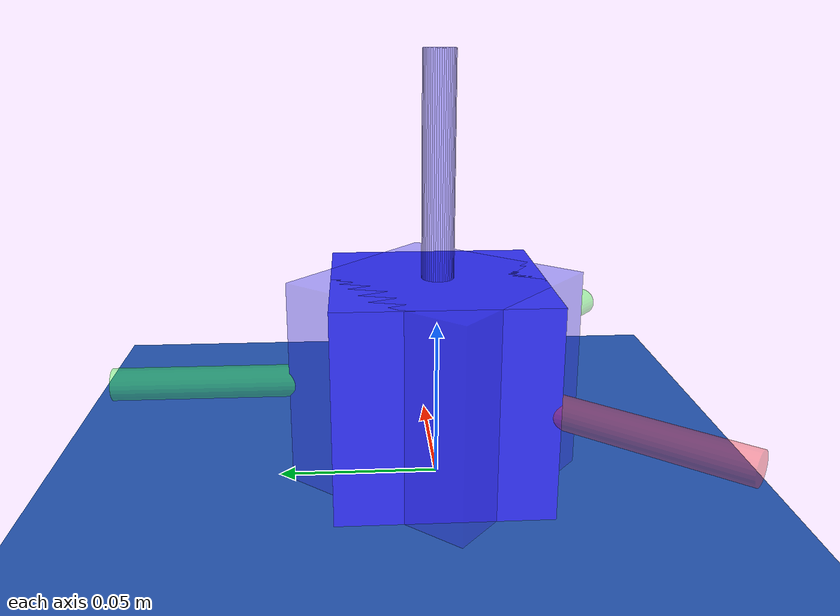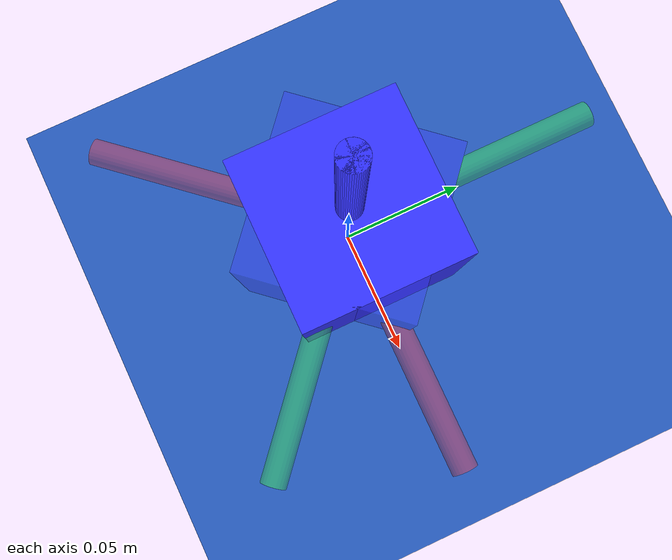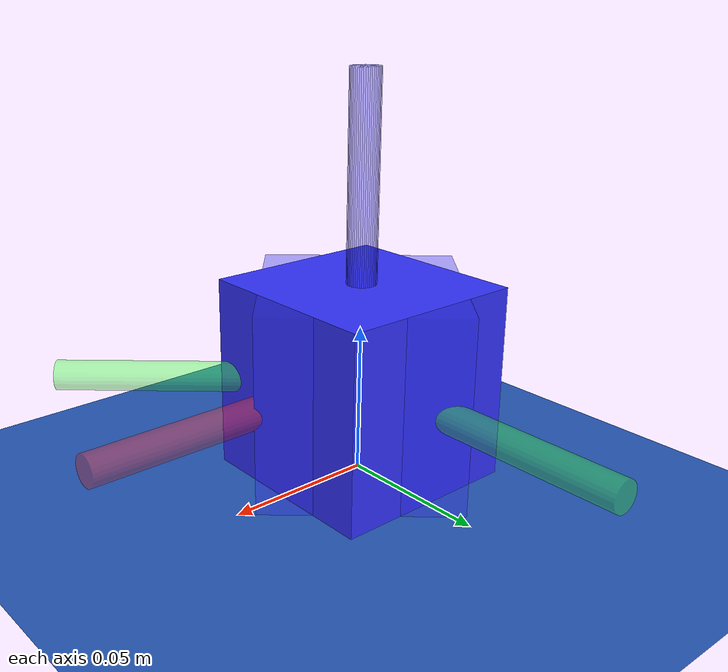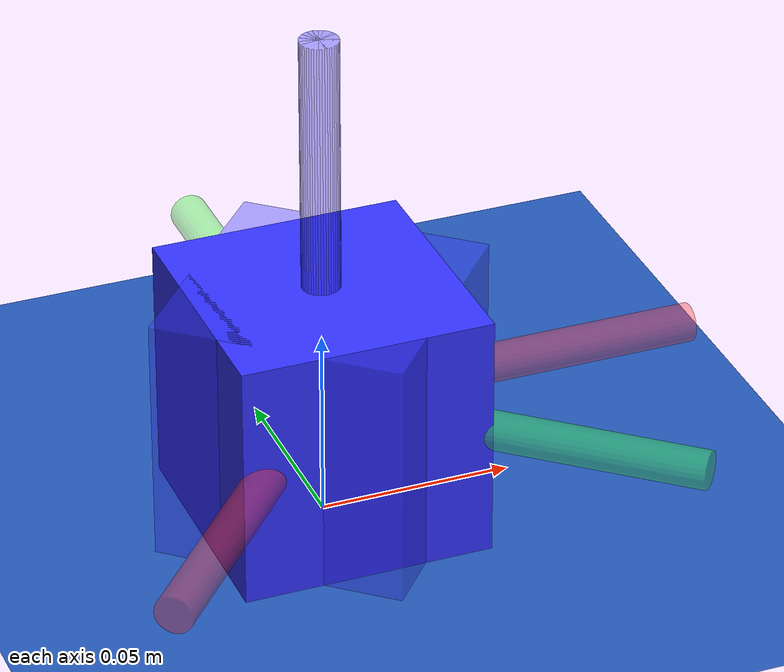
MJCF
<mujoco model="Simplified Trifinger Cube Rotation">
  <include file="../common.xml"/>

  <size memory="1M"/>

  <!-- const char kPlannerNames[] =
    "Sampling\n"
    "Gradient\n"
    "iLQG\n"
    "iLQS\n"
    "Robust Sampling\n"
    "Cross Entropy\n"
    "Sample Gradient"; -->

  <custom>
    <numeric name="agent_planner" data="2" />
    <numeric name="agent_horizon" data="4" />
    <numeric name="agent_timestep" data="0.02" />
    <numeric name="agent_policy_width" data="0.001" />
    <numeric name="sampling_trajectories" data="128"/>
    <numeric name="sampling_spline_points" data="10"/>
    <!-- sampling_exploration is "Noise Std" slider in GUI -->
    <numeric name="sampling_exploration" data="0.3 0.0" />
    <numeric name="gradient_spline_points" data="6" />

    <!-- cem -->
    <numeric name="n_elite" data="10" />
    <numeric name="std_min" data="0.5" />
  </custom>

  <!-- Set camera angle. -->
  <statistic extent="1.0" center="0. 0.0 -0.1"/>
  <visual>
    <quality shadowsize="8192"/>
    <global azimuth="200" elevation="-90" />
  </visual>

  <default>
    <geom solref=".001 1"/>
    <default class="no_collision">
      <geom group="1" contype="0" conaffinity="0" mass="0"/>
    </default>
  </default>

  <compiler texturedir="./textures"/>

  <worldbody>
    <site name="world"/>
    <light pos="0 -0.1 0.5" dir="0 0.2 -1" diffuse="0.7 0.7 0.7" specular="0.3 0.3 0.3" directional="true" castshadow="true"/>

    <!-- Grid for rendering shows up just below table surface. -->
    <geom name="floor" pos="0 0 0" size="0 0 0.05" type="plane" material="blue_grid"/>

    <body name="target" pos="0 0 0.0325" quat="-0.4161468 0 0 0.9092974" gravcomp="1" mocap="true">
      <!-- Capsules in order BRG, along ZXY directions. -->
      <geom class="no_collision" type="box" size="0.0325 0.0325 0.0325" mass="0.094" rgba=".2 .2 1 0.4"/>

      <!-- Add triad for viewing orientation. -->
      <geom class="no_collision" type="cylinder" size="0.005" fromto="0 0 0 0.1 0 0" rgba="1 .2 .2 .4"/>
      <geom class="no_collision" type="cylinder" size="0.005" fromto="0 0 0 0 0.1 0" rgba=".2 1 .2 .4"/>
      <geom class="no_collision" type="cylinder" size="0.005" fromto="0 0 0 0 0 0.1" rgba=".2 .2 1 .4"/>
    </body>
    <body name="cube" pos="0 0 0.0325">
      <freejoint/>
      <geom type="box"  size="0.0325 0.0325 0.0325" pos="0.0 0.0 0.0" quat="1 0 0 0" mass="0.094" condim="6" friction="0.5" rgba="0.2 0.2 1 1"/>
      <!-- Add triad for viewing orientation. -->
      <geom class="no_collision" type="cylinder" size="0.005" fromto="0 0 0 0.1 0 0" rgba="1 .2 .2 .4"/>
      <geom class="no_collision" type="cylinder" size="0.005" fromto="0 0 0 0 0.1 0" rgba=".2 1 .2 .4"/>
      <geom class="no_collision" type="cylinder" size="0.005" fromto="0 0 0 0 0 0.1" rgba=".2 .2 1 .4"/>
      <site name="corner_1" pos="0.0325 0.0325 0.0" rgba="0 0 0 0"/>
      <site name="corner_2" pos="-0.0325 0.0325 0.0" rgba="0 0 0 0"/>
      <site name="corner_3" pos="-0.0325 -0.0325 0.0" rgba="0 0 0 0"/>
      <site name="corner_4" pos="0.0325 -0.0325 0.0" rgba="0 0 0 0"/>
    </body>
  </worldbody>

  <keyframe>
    <!-- TODO:  It's unclear what this is used for. -->
    <!-- Guessed order:  EE xyz, jack wxyz, jack xyz -->
    <key name="home" qpos=" 0 0.0 0.0325 1 0 0 0 -0.01 0.06 0.0325 -0.01 -0.06 0.0325 0.06 0 0.0325 "/>
  </keyframe>

  <sensor>
    <!-- norm_type=0 means kQuadratic norm:  y = 0.5 * x' * x -->
    <!-- user="norm_type weight weight_lower weight_upper extras_by_norm_type" -->
    <user name="Cube Target" dim="3" user="0 800 0 1000"/>
    <user name="Cube Orientation" dim="4" user="0 5.0 0 10"/>
    <user name="Cube Linear Velocity" dim="3" user="0 1.5 0 0.05"/>
    <user name="Cube Angular Velocity" dim="3" user="0 1.5 0 10"/>
    <user name="Control Input" dim="9" user="0 4.0 0 10.0"/>
    <user name="Fingertip0 Cube Distance" dim="3" user="0 0.2 0 10"/>
    <user name="Fingertip1 Cube Distance" dim="3" user="0 0.2 0 10"/>
    <user name="Fingertip2 Cube Distance" dim="3" user="0 0.2 0 10"/>
    <user name="Avoiding corner fingertip 0" dim="1" user="-1 0 0 1e-5"/>
    <user name="Avoiding corner fingertip 1" dim="1" user="-1 0 0 1e-5"/>
    <user name="Avoiding corner fingertip 2" dim="1" user="-1 0 0 1e-5"/>
    <user name="Fingertip 0 Linear Velocity" dim="3" user="0 3.0 0 10"/>
    <user name="Fingertip 1 Linear Velocity" dim="3" user="0 3.0 0 10"/>
    <user name="Fingertip 2 Linear Velocity" dim="3" user="0 3.0 0 10"/>

    <!-- Sensors for fingertips velocities. -->
    <framelinvel name="fingertip0_linear_vel" objtype="body" objname="fingertip0"/>
    <framelinvel name="fingertip1_linear_vel" objtype="body" objname="fingertip1"/>
    <framelinvel name="fingertip2_linear_vel" objtype="body" objname="fingertip2"/>

    <framepos name="cube" objtype="body" objname="cube"/>
    <framepos name="target" objtype="body" objname="target"/>
    <framepos name="fingertip0" objtype="body" objname="fingertip0"/>
    <framepos name="fingertip1" objtype="body" objname="fingertip1"/>
    <framepos name="fingertip2" objtype="body" objname="fingertip2"/>

    <!-- Sensors for body orientations. -->
    <framequat name="cube_quat" objtype="body" objname="cube"/>
    <framequat name="target_quat" objtype="body" objname="target"/>

    <!-- Sensors for body velocities. -->
    <framelinvel name="cube_linear_vel" objtype="body" objname="cube"/>
    <frameangvel name="cube_angular_vel" objtype="body" objname="cube"/>

    <!-- Sensors for traces. -->
    <framepos name="trace0" objtype="site" objname="fingertip0"/>
    <framepos name="trace1" objtype="site" objname="fingertip1"/>
    <framepos name="trace2" objtype="site" objname="fingertip2"/>
    <framepos name="trace3" objtype="body" objname="cube"/>

    <!-- Sensors for cube corner positions. -->
    <framepos name="corner_1" objtype="site" objname="corner_1"/>
    <framepos name="corner_2" objtype="site" objname="corner_2"/>
    <framepos name="corner_3" objtype="site" objname="corner_3"/>
    <framepos name="corner_4" objtype="site" objname="corner_4"/>
  </sensor>

  <include file="simplified_trifinger.xml"/>
</mujoco>

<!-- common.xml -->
<mujoco>

    <visual>
        <headlight ambient=".4 .4 .4" diffuse=".8 .8 .8" specular="0.1 0.1 0.1"/>
        <map znear=".01"/>
        <quality shadowsize="2048"/>
        <global elevation="-15"/>
    </visual>

    <asset>
        <texture name="blue_grid" type="2d" builtin="checker" rgb1=".02 .14 .44" rgb2=".27 .55 1" width="300" height="300" mark="edge" markrgb="1 1 1"/>
        <material name="blue_grid" texture="blue_grid" texrepeat="1 1" texuniform="true" reflectance=".2"/>

        <texture name="grey_grid" type="2d" builtin="checker" rgb1=".26 .26 .26" rgb2=".6 .6 .6" width="300" height="300" mark="edge" markrgb="1 1 1"/>
        <material name="grey_grid" texture="grey_grid" texrepeat="1 1" texuniform="true" reflectance=".2"/>
        <texture name="skybox" type="skybox" builtin="gradient" rgb1=".66 .79 1" rgb2=".9 .91 .93" width="800" height="800"/>

        <material name="self" rgba=".7 .5 .3 1"/>
        <material name="self_default" rgba=".7 .5 .3 1"/>
        <material name="self_highlight" rgba="0 .5 .3 1"/>
        <material name="effector" rgba=".7 .4 .2 1"/>
        <material name="effector_default" rgba=".7 .4 .2 1"/>
        <material name="effector_highlight" rgba="0 .5 .3 1"/>
        <material name="decoration" rgba=".2 .6 .3 1"/>
        <material name="eye" rgba="0 .2 1 1"/>
        <material name="target" rgba=".6 .3 .3 1"/>
        <material name="target_default" rgba=".6 .3 .3 1"/>
        <material name="target_highlight" rgba=".6 .3 .3 .4"/>
        <material name="site" rgba=".5 .5 .5 .3"/>
    </asset>

    <size memory="1M"/>

    <statistic extent="0.4" center="0.3 0.1 0"/>

    <visual>
        <quality shadowsize="8192"/>
        <global azimuth="180" elevation="-30"/>
    </visual>

    <default>
        <geom friction="1.0"/>
    </default>

    <compiler angle="radian" autolimits="true"/>

    <asset>
        <mesh name="apple" file="../../shared_assets/apple/apple.obj" />
        <mesh name="apple_contact0" file="../../shared_assets/apple/contact0.stl"  />
        <mesh name="apple_contact1" file="../../shared_assets/apple/contact1.stl"  />

        <mesh name="doorknob" file="../../shared_assets/doorknob/doorknob.obj" />

        <mesh name="flashlight" file="../../shared_assets/flashlight/flashlight.obj" />
        <mesh name="flashlight_contact0" file="../../shared_assets/flashlight/contact0.stl"  />
        <mesh name="flashlight_contact1" file="../../shared_assets/flashlight/contact1.stl"  />

        <mesh name="hammer" file="../../shared_assets/hammer/hammer.obj" />
        <mesh name="hammer_contact0" file="../../shared_assets/hammer/contact0.stl"  />
        <mesh name="hammer_contact1" file="../../shared_assets/hammer/contact1.stl"  />

        <mesh name="phone" file="../../shared_assets/phone/phone.obj" />
        <mesh name="phone_contact0" file="../../shared_assets/phone/contact0.stl"  />
        <mesh name="phone_contact1" file="../../shared_assets/phone/contact1.stl"  />
        <mesh name="phone_contact2" file="../../shared_assets/phone/contact2.stl"  />

        <mesh name="stapler" file="../../shared_assets/stapler/stapler.obj" />
        <mesh name="stapler_contact0" file="../../shared_assets/stapler/contact0.stl"  />
        <mesh name="stapler_contact1" file="../../shared_assets/stapler/contact1.stl"  />
        <mesh name="stapler_contact2" file="../../shared_assets/stapler/contact2.stl"  />
        <mesh name="stapler_contact3" file="../../shared_assets/stapler/contact3.stl"  />
        <mesh name="stapler_contact4" file="../../shared_assets/stapler/contact4.stl"  />

        <mesh name="waterbottle" file="../../shared_assets/waterbottle/waterbottle.obj" />
        <mesh name="waterbottle_contact0" file="../../shared_assets/waterbottle/contact0.stl"  />
        <mesh name="waterbottle_contact1" file="../../shared_assets/waterbottle/contact1.stl"  />
    </asset>

</mujoco>

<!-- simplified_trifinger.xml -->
<mujoco model="simplified_trifinger">
  <compiler angle="radian" meshdir="assets" autolimits="true"/>

  <option timestep="0.001"/>

  <worldbody>
    <light name="top" pos="0 0 2" mode="trackcom"/>
    <body name="fingertip0">
      <geom type="sphere" size="0.0095" mass="0.1" priority="1" condim="3" friction="0.5 .01 .003" rgba="1.0 0 0 1"/>
      <joint name="fingetip0_x" type="slide" range="-0.06 0.02" axis="1 0 0" limited="true"/>
      <joint name="fingetip0_y" type="slide" range="0.01 0.09" axis="0 1 0" limited="true"/>
      <joint name="fingetip0_z" type="slide" range="0.028 0.033" axis="0 0 1" limited="true"/>
      <site name="fingertip0" pos="0 0 0.0" group="3"/>
    </body>
    <body name="fingertip1">
      <geom type="sphere" size="0.0095" mass="0.1" priority="1" condim="3" friction="0.5 .01 .003" rgba="0.0 1.0 0 1"/>
      <joint name="fingertip1_x" type="slide" range="-0.06 0.02" axis="1 0 0" limited="true"/>
      <joint name="fingertip1_y" type="slide" range="-0.09 0.01" axis="0 1 0" limited="true"/>
      <joint name="fingertip1_z" type="slide" range="0.028 0.033" axis="0 0 1" limited="true"/>
      <site name="fingertip1" pos="0 0 0.0" group="3"/>
    </body>
    <body name="fingertip2">
      <geom type="sphere" size="0.0095" mass="0.1" priority="1" condim="3" friction="0.5 .01 .003" rgba="0 0 1.0 1"/>
      <joint name="fingertip2_x" type="slide" range="0.01 0.09" axis="1 0 0" limited="true"/>
      <joint name="fingertip2_y" type="slide" range="-0.04 0.04" axis="0 1 0" limited="true"/>
      <joint name="fingertip2_z" type="slide" range="0.028 0.033" axis="0 0 1" limited="true"/>
      <site name="fingertip2" pos="0 0 0.0" group="3"/>
    </body>
  </worldbody>

  <actuator>
    <general site="fingertip0" refsite="world" gaintype="fixed" forcerange="-2 2" ctrlrange="-1 1" forcelimited="true" ctrllimited="true" gainprm="2" gear="1 0 0 0 0 0"/>
    <general site="fingertip0" refsite="world" gaintype="fixed" forcerange="-2 2" ctrlrange="-1 1" forcelimited="true" ctrllimited="true" gainprm="2" gear="0 1 0 0 0 0"/>
    <general site="fingertip0" refsite="world" gaintype="fixed" forcerange="-2 2" ctrlrange="-1 1" forcelimited="true" ctrllimited="true" gainprm="2" gear="0 0 1 0 0 0"/>
    <general site="fingertip1" refsite="world" gaintype="fixed" forcerange="-2 2" ctrlrange="-1 1" forcelimited="true" ctrllimited="true" gainprm="2" gear="1 0 0 0 0 0"/>
    <general site="fingertip1" refsite="world" gaintype="fixed" forcerange="-2 2" ctrlrange="-1 1" forcelimited="true" ctrllimited="true" gainprm="2" gear="0 1 0 0 0 0"/>
    <general site="fingertip1" refsite="world" gaintype="fixed" forcerange="-2 2" ctrlrange="-1 1" forcelimited="true" ctrllimited="true" gainprm="2" gear="0 0 1 0 0 0"/>
    <general site="fingertip2" refsite="world" gaintype="fixed" forcerange="-2 2" ctrlrange="-1 1" forcelimited="true" ctrllimited="true" gainprm="2" gear="1 0 0 0 0 0"/>
    <general site="fingertip2" refsite="world" gaintype="fixed" forcerange="-2 2" ctrlrange="-1 1" forcelimited="true" ctrllimited="true" gainprm="2" gear="0 1 0 0 0 0"/>
    <general site="fingertip2" refsite="world" gaintype="fixed" forcerange="-2 2" ctrlrange="-1 1" forcelimited="true" ctrllimited="true" gainprm="2" gear="0 0 1 0 0 0"/>
  </actuator>
</mujoco>
